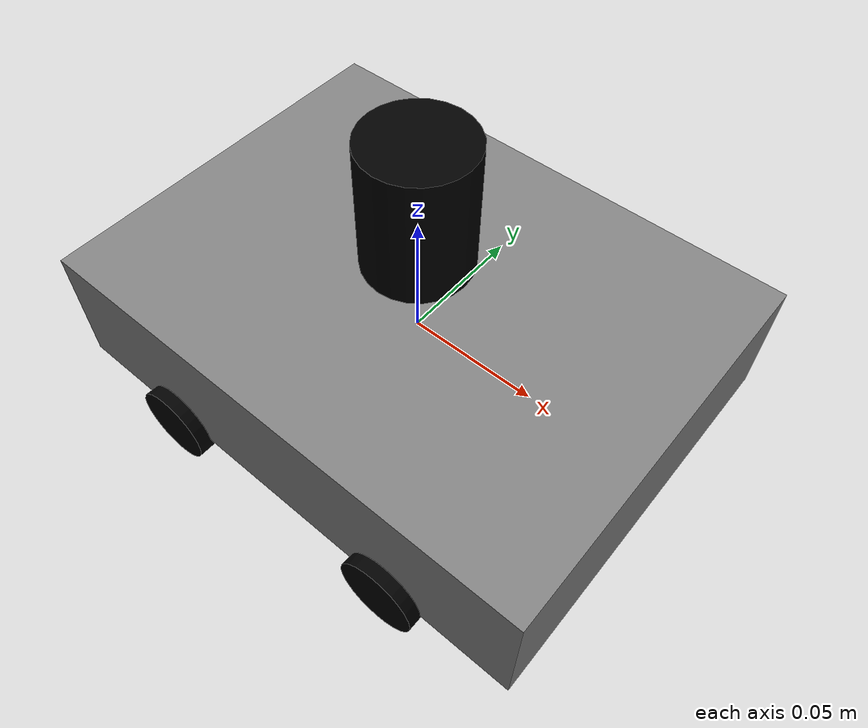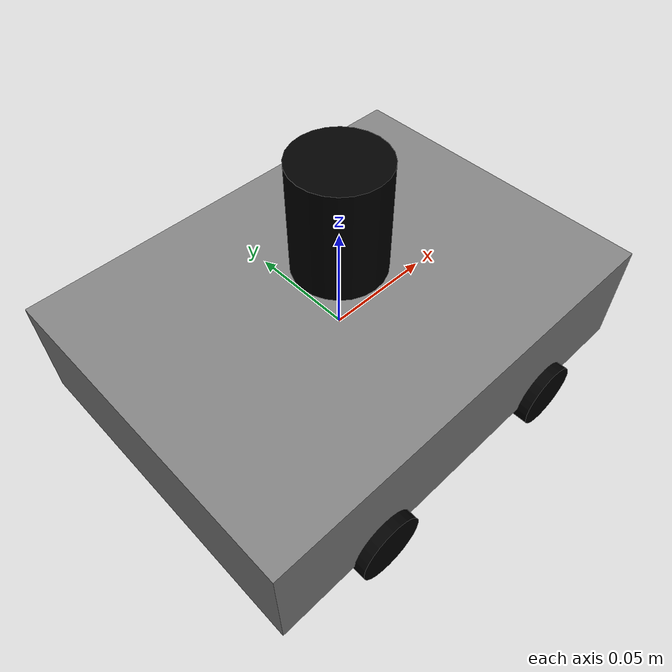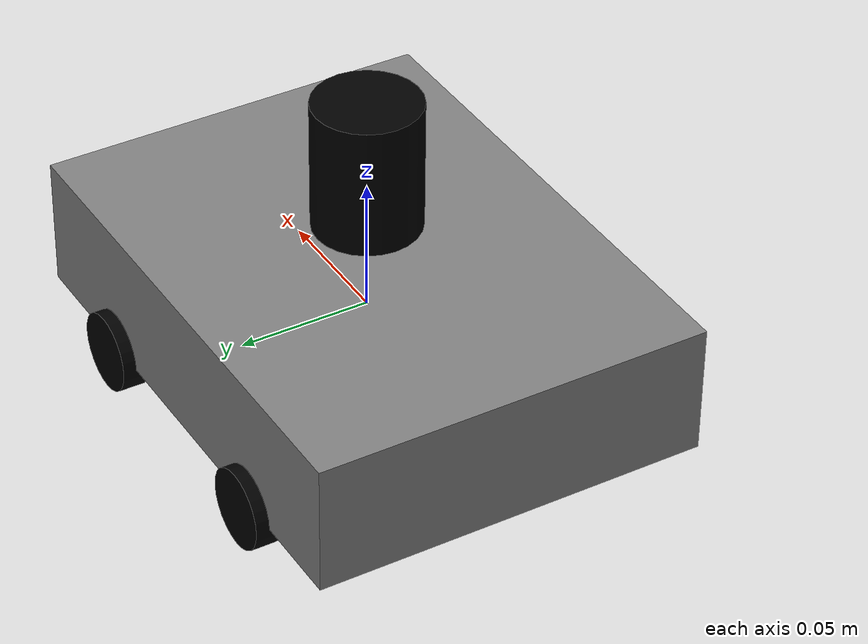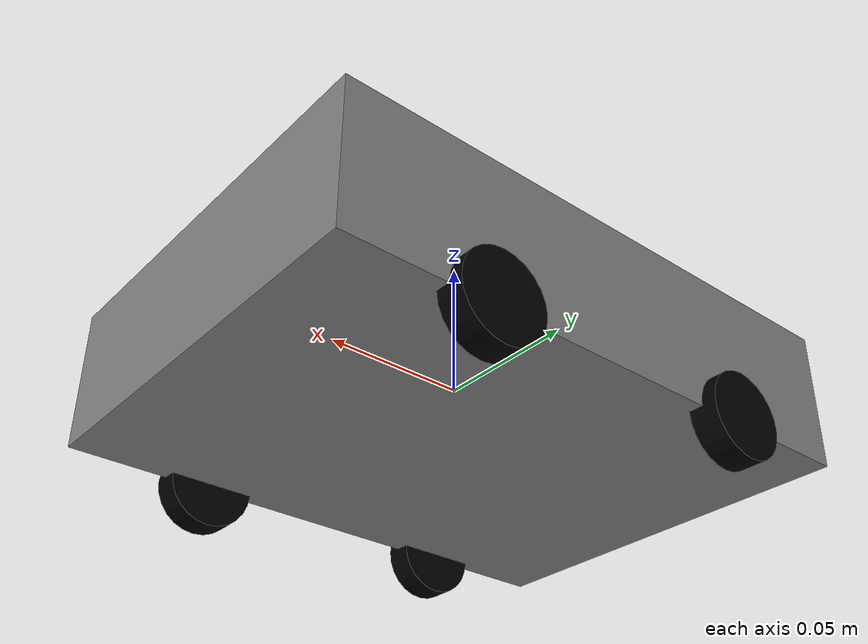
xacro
<?xml version="1.0"?>
<robot xmlns:xacro="http://www.ros.org/wiki/xacro" name="goku_robot">
  <xacro:arg name="prefix" default="" />
  <xacro:arg name="use_mock_hardware" default="false" />

  <xacro:property name="wheel_radius" value="0.015" />
  <xacro:property name="wheel_separation" value="0.10" />
  <xacro:property name="wheelbase" value="0.15" />

  <material name="gray"><color rgba="0.5 0.5 0.5 1.0"/></material>
  <material name="black"><color rgba="0.0 0.0 0.0 1.0"/></material>

  <link name="base_link">
    <visual>
      <geometry><box size="0.2 0.15 0.05"/></geometry>
      <material name="gray"/>
    </visual>
    <collision>
      <geometry><box size="0.2 0.15 0.05"/></geometry>
    </collision>
    <inertial>
      <mass value="1.0"/>
      <inertia ixx="0.01" ixy="0.0" ixz="0.0" iyy="0.01" iyz="0.0" izz="0.01"/>
    </inertial>
  </link>

  <xacro:macro name="wheel" params="side prefix x_pos y_pos">
    <link name="${prefix}${side}_wheel_link">
      <visual>
        <geometry><cylinder radius="${wheel_radius}" length="0.01"/></geometry>
        <material name="black"/>
      </visual>
      <collision>
        <geometry><cylinder radius="${wheel_radius}" length="0.01"/></geometry>
      </collision>
      <inertial>
        <mass value="0.1"/>
        <inertia ixx="0.0001" ixy="0.0" ixz="0.0" iyy="0.0001" iyz="0.0" izz="0.0001"/>
      </inertial>
    </link>
    <joint name="${prefix}${side}_wheel_joint" type="continuous">
      <parent link="base_link"/>
      <child link="${prefix}${side}_wheel_link"/>
      <origin xyz="${x_pos} ${y_pos} -0.025" rpy="1.5708 0 0"/>
      <axis xyz="0 0 1"/>
    </joint>
  </xacro:macro>

  <xacro:wheel side="left_front" prefix="$(arg prefix)" x_pos="-${wheel_separation/2}" y_pos="${wheelbase/2}"/>
  <xacro:wheel side="right_front" prefix="$(arg prefix)" x_pos="${wheel_separation/2}" y_pos="${wheelbase/2}"/>
  <xacro:wheel side="left_rear" prefix="$(arg prefix)" x_pos="-${wheel_separation/2}" y_pos="-${wheelbase/2}"/>
  <xacro:wheel side="right_rear" prefix="$(arg prefix)" x_pos="${wheel_separation/2}" y_pos="-${wheelbase/2}"/>

  <!-- LiDAR -->
  <link name="lidar_link">
    <visual><geometry><cylinder radius="0.02" length="0.05"/></geometry><material name="black"/></visual>
    <collision><geometry><cylinder radius="0.02" length="0.05"/></geometry></collision>
    <inertial><mass value="0.1"/><inertia ixx="0.0001" ixy="0" ixz="0" iyy="0.0001" iyz="0" izz="0.0001"/></inertial>
  </link>
  <joint name="lidar_joint" type="fixed">
    <parent link="base_link"/>
    <child link="lidar_link"/>
    <origin xyz="0 0 0.06" rpy="0 0 0"/>
  </joint>

  <!-- IMU -->
  <link name="imu_link">
    <inertial><mass value="0.01"/><inertia ixx="0.00001" ixy="0" ixz="0" iyy="0.00001" iyz="0" izz="0.00001"/></inertial>
  </link>
  <joint name="imu_joint" type="fixed">
    <parent link="base_link"/>
    <child link="imu_link"/>
    <origin xyz="0 0 0.025" rpy="0 0 0"/>
  </joint>

  <xacro:goku_ros2_control name="Goku" prefix="$(arg prefix)" use_mock_hardware="$(arg use_mock_hardware)"/>
</robot>
